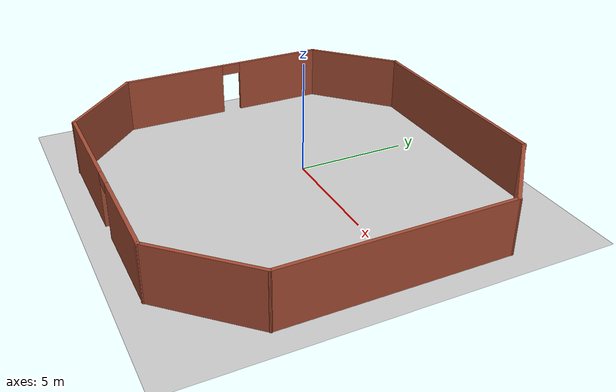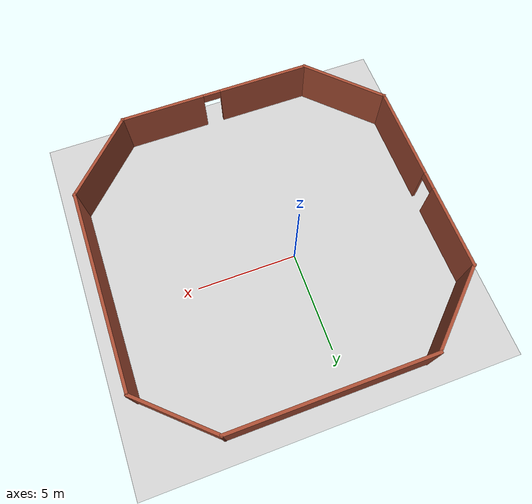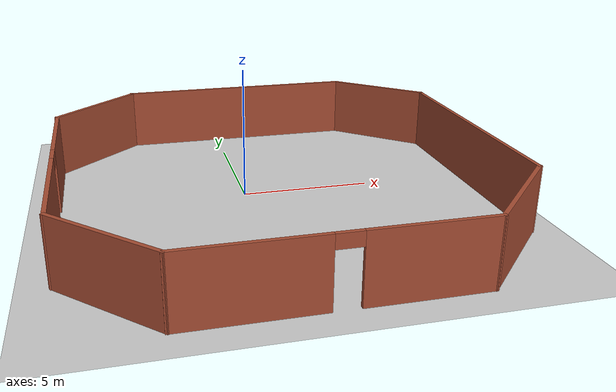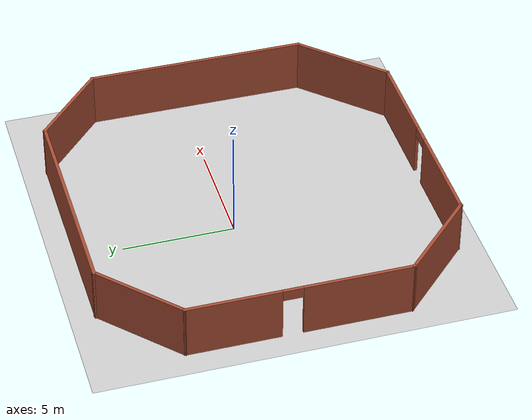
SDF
<sdf version="1.7">
 <world name="default">
  <light name="sun" type="directional">
   <pose>0 0 10 0 -0 0</pose>
   <diffuse>0.8 0.8 0.8 1</diffuse>
   <specular>0.2 0.2 0.2 1</specular>
   <attenuation>
    <range>1000</range>
    <constant>0.9</constant>
    <linear>0.01</linear>
    <quadratic>0.001</quadratic>
   </attenuation>
   <direction>-0.5 0.1 -0.9</direction>
   <spot><inner_angle>0</inner_angle><outer_angle>0</outer_angle><falloff>0</falloff></spot>
  </light>
  <model name="ground_plane">
   <static>1</static>
   <link name="link">
    <collision name="collision">
     <geometry><plane><normal>0 0 1</normal><size>100 100</size></plane></geometry>
     <surface><friction><ode><mu>100</mu><mu2>50</mu2></ode></friction></surface>
    </collision>
    <visual name="visual">
     <cast_shadows>0</cast_shadows>
     <geometry><plane><normal>0 0 1</normal><size>100 100</size></plane></geometry>
     <material>
      <script><uri>file://media/materials/scripts/gazebo.material</uri><name>Gazebo/Grey</name></script>
     </material>
    </visual>
   </link>
  </model>
  <gravity>0 0 -9.8</gravity>
  <magnetic_field>6e-06 2.3e-05 -4.2e-05</magnetic_field>
  <atmosphere type="adiabatic"/>
  <physics type="ode">
   <max_step_size>0.001</max_step_size>
   <real_time_factor>1</real_time_factor>
   <real_time_update_rate>1000</real_time_update_rate>
  </physics>
  <scene><ambient>0.4 0.4 0.4 1</ambient><background>0.7 0.7 0.7 1</background><shadows>1</shadows></scene>
  <audio><device>default</device></audio>
  <spherical_coordinates>
   <surface_model>EARTH_WGS84</surface_model>
   <latitude_deg>0</latitude_deg>
   <longitude_deg>0</longitude_deg>
   <elevation>0</elevation>
   <heading_deg>0</heading_deg>
  </spherical_coordinates>
  <model name="scuttle_bot.world">
   <pose>1.03814 -0.974093 0 0 -0 0</pose>
   <link name="Wall_32">
    <pose>-8.11335 0.060627 0 0 -0 -1.5708</pose>
    <visual name="Wall_32_Visual_0">
     <pose>-2.88847 0 1.25 0 -0 0</pose>
     <geometry><box><size>4.22307 0.15 2.5</size></box></geometry>
     <material>
      <script><uri>file://media/materials/scripts/gazebo.material</uri><name>Gazebo/Bricks</name></script>
      <ambient>1 1 1 1</ambient>
     </material>
     <meta><layer>0</layer></meta>
    </visual>
    <collision name="Wall_32_Collision_0">
     <geometry><box><size>4.22307 0.15 2.5</size></box></geometry>
     <pose>-2.88847 0 1.25 0 -0 0</pose>
    </collision>
    <visual name="Wall_32_Visual_1">
     <pose>2.56153 0 1.25 0 -0 0</pose>
     <geometry><box><size>4.87693 0.15 2.5</size></box></geometry>
     <material>
      <script><uri>file://media/materials/scripts/gazebo.material</uri><name>Gazebo/Bricks</name></script>
      <ambient>1 1 1 1</ambient>
     </material>
     <meta><layer>0</layer></meta>
    </visual>
    <collision name="Wall_32_Collision_1">
     <geometry><box><size>4.87693 0.15 2.5</size></box></geometry>
     <pose>2.56153 0 1.25 0 -0 0</pose>
    </collision>
    <visual name="Wall_32_Visual_2">
     <pose>-0.326935 0 2.25 0 -0 0</pose>
     <geometry><box><size>0.9 0.15 0.5</size></box></geometry>
     <material>
      <script><uri>file://media/materials/scripts/gazebo.material</uri><name>Gazebo/Bricks</name></script>
      <ambient>1 1 1 1</ambient>
     </material>
     <meta><layer>0</layer></meta>
    </visual>
    <collision name="Wall_32_Collision_2">
     <geometry><box><size>0.9 0.15 0.5</size></box></geometry>
     <pose>-0.326935 0 2.25 0 -0 0</pose>
    </collision>
   </link>
   <link name="Wall_34">
    <collision name="Wall_34_Collision">
     <geometry><box><size>10 0.15 2.5</size></box></geometry>
     <pose>0 0 1.25 0 -0 0</pose>
    </collision>
    <visual name="Wall_34_Visual">
     <pose>0 0 1.25 0 -0 0</pose>
     <geometry><box><size>10 0.15 2.5</size></box></geometry>
     <material>
      <script><uri>file://media/materials/scripts/gazebo.material</uri><name>Gazebo/Bricks</name></script>
      <ambient>0.921569 0.807843 0.615686 1</ambient>
     </material>
     <meta><layer>0</layer></meta>
    </visual>
    <pose>-0.004707 8.02904 0 0 -0 0</pose>
   </link>
   <link name="Wall_36">
    <collision name="Wall_36_Collision">
     <geometry><box><size>4.58364 0.15 2.5</size></box></geometry>
     <pose>0 0 1.25 0 -0 0</pose>
    </collision>
    <visual name="Wall_36_Visual">
     <pose>0 0 1.25 0 -0 0</pose>
     <geometry><box><size>4.58364 0.15 2.5</size></box></geometry>
     <material>
      <script><uri>file://media/materials/scripts/gazebo.material</uri><name>Gazebo/Bricks</name></script>
      <ambient>0.921569 0.807843 0.615686 1</ambient>
     </material>
     <meta><layer>0</layer></meta>
    </visual>
    <pose>-6.5013 6.50733 0 0 -0 -2.38502</pose>
   </link>
   <link name="Wall_38">
    <pose>-0.028785 -8.029 0 0 -0 0</pose>
    <visual name="Wall_38_Visual_0">
     <pose>-2.61773 0 1.25 0 -0 0</pose>
     <geometry><box><size>4.76455 0.15 2.5</size></box></geometry>
     <material>
      <script><uri>file://media/materials/scripts/gazebo.material</uri><name>Gazebo/Bricks</name></script>
      <ambient>1 1 1 1</ambient>
     </material>
     <meta><layer>0</layer></meta>
    </visual>
    <collision name="Wall_38_Collision_0">
     <geometry><box><size>4.76455 0.15 2.5</size></box></geometry>
     <pose>-2.61773 0 1.25 0 -0 0</pose>
    </collision>
    <visual name="Wall_38_Visual_1">
     <pose>2.83227 0 1.25 0 -0 0</pose>
     <geometry><box><size>4.33545 0.15 2.5</size></box></geometry>
     <material>
      <script><uri>file://media/materials/scripts/gazebo.material</uri><name>Gazebo/Bricks</name></script>
      <ambient>1 1 1 1</ambient>
     </material>
     <meta><layer>0</layer></meta>
    </visual>
    <collision name="Wall_38_Collision_1">
     <geometry><box><size>4.33545 0.15 2.5</size></box></geometry>
     <pose>2.83227 0 1.25 0 -0 0</pose>
    </collision>
    <visual name="Wall_38_Visual_2">
     <pose>0.214547 0 2.25 0 -0 0</pose>
     <geometry><box><size>0.9 0.15 0.5</size></box></geometry>
     <material>
      <script><uri>file://media/materials/scripts/gazebo.material</uri><name>Gazebo/Bricks</name></script>
      <ambient>1 1 1 1</ambient>
     </material>
     <meta><layer>0</layer></meta>
    </visual>
    <collision name="Wall_38_Collision_2">
     <geometry><box><size>0.9 0.15 0.5</size></box></geometry>
     <pose>0.214547 0 2.25 0 -0 0</pose>
    </collision>
   </link>
   <link name="Wall_40">
    <collision name="Wall_40_Collision">
     <geometry><box><size>4.62188 0.15 2.5</size></box></geometry>
     <pose>0 0 1.25 0 -0 0</pose>
    </collision>
    <visual name="Wall_40_Visual">
     <pose>0 0 1.25 0 -0 0</pose>
     <geometry><box><size>4.62188 0.15 2.5</size></box></geometry>
     <material>
      <script><uri>file://media/materials/scripts/gazebo.material</uri><name>Gazebo/Bricks</name></script>
      <ambient>1 1 1 1</ambient>
     </material>
     <meta><layer>0</layer></meta>
    </visual>
    <pose>-6.53357 -6.44669 0 0 -0 -0.786198</pose>
   </link>
   <link name="Wall_42">
    <collision name="Wall_42_Collision">
     <geometry><box><size>10 0.15 2.5</size></box></geometry>
     <pose>0 0 1.25 0 -0 0</pose>
    </collision>
    <visual name="Wall_42_Visual">
     <pose>0 0 1.25 0 -0 0</pose>
     <geometry><box><size>10 0.15 2.5</size></box></geometry>
     <material>
      <script><uri>file://media/materials/scripts/gazebo.material</uri><name>Gazebo/Bricks</name></script>
      <ambient>1 1 1 1</ambient>
     </material>
     <meta><layer>0</layer></meta>
    </visual>
    <pose>8.11337 0.234522 0 0 -0 -1.5708</pose>
   </link>
   <link name="Wall_44">
    <collision name="Wall_44_Collision">
     <geometry><box><size>4.443 0.15 2.5</size></box></geometry>
     <pose>0 0 1.25 0 -0 0</pose>
    </collision>
    <visual name="Wall_44_Visual">
     <pose>0 0 1.25 0 -0 0</pose>
     <geometry><box><size>4.443 0.15 2.5</size></box></geometry>
     <material>
      <script><uri>file://media/materials/scripts/gazebo.material</uri><name>Gazebo/Bricks</name></script>
      <ambient>1 1 1 1</ambient>
     </material>
     <meta><layer>0</layer></meta>
    </visual>
    <pose>6.51683 6.59428 0 0 -0 -0.73208</pose>
   </link>
   <link name="Wall_46">
    <collision name="Wall_46_Collision">
     <geometry><box><size>4.78635 0.15 2.5</size></box></geometry>
     <pose>0 0 1.25 0 -0 0</pose>
    </collision>
    <visual name="Wall_46_Visual">
     <pose>0 0 1.25 0 -0 0</pose>
     <geometry><box><size>4.78635 0.15 2.5</size></box></geometry>
     <material>
      <script><uri>file://media/materials/scripts/gazebo.material</uri><name>Gazebo/Bricks</name></script>
      <ambient>1 1 1 1</ambient>
     </material>
     <meta><layer>0</layer></meta>
    </visual>
    <pose>6.50479 -6.35974 0 0 -0 -2.33768</pose>
   </link>
   <static>1</static>
  </model>
 </world>
</sdf>
